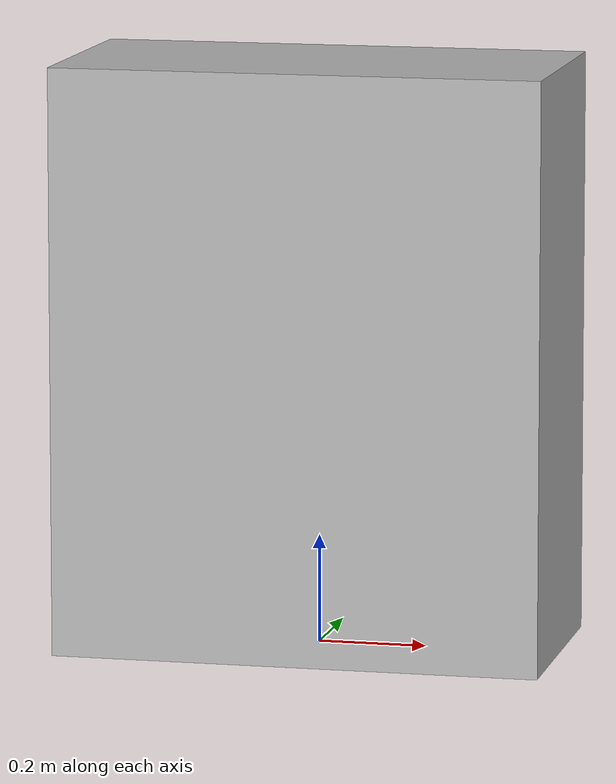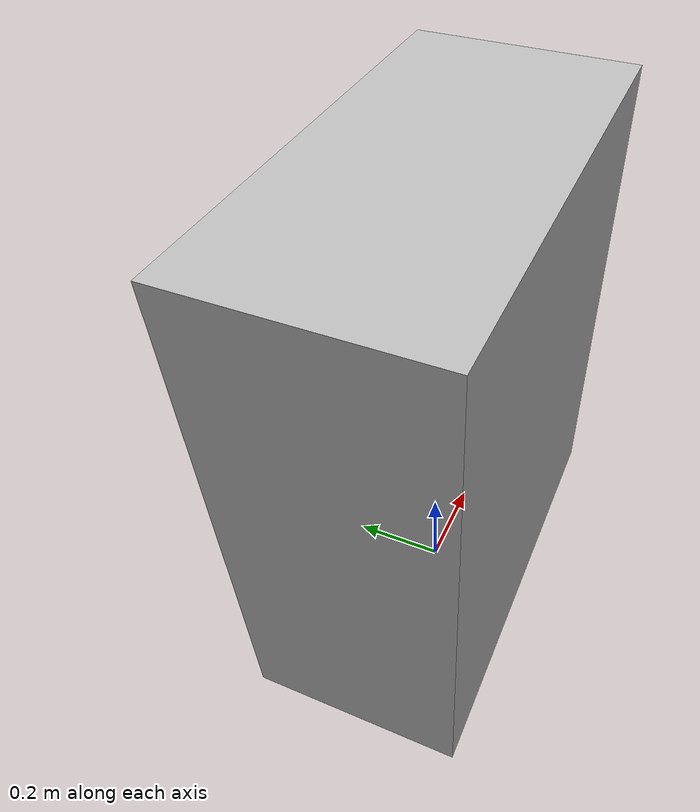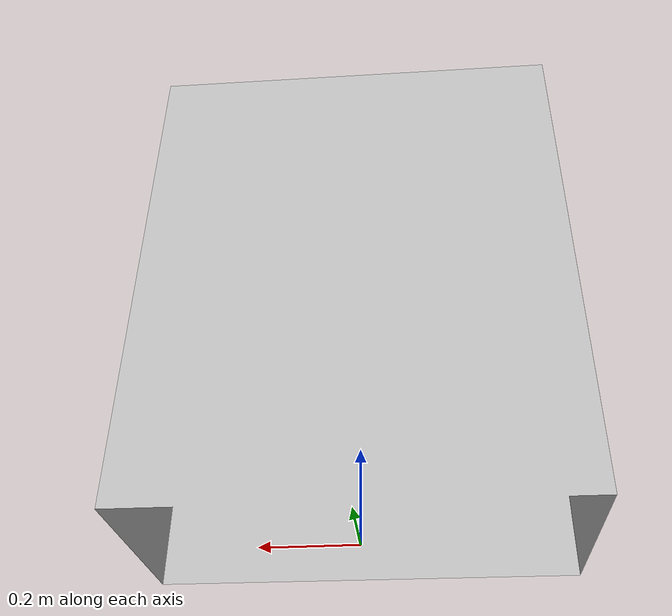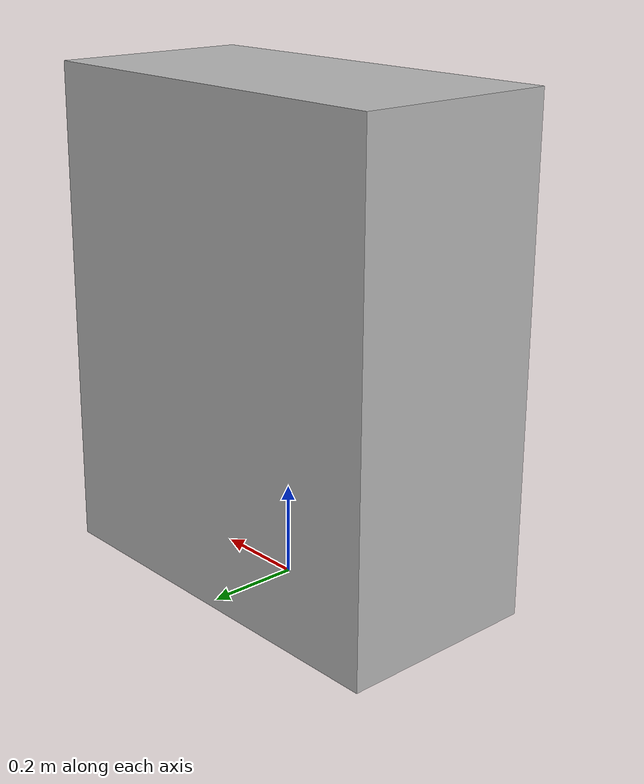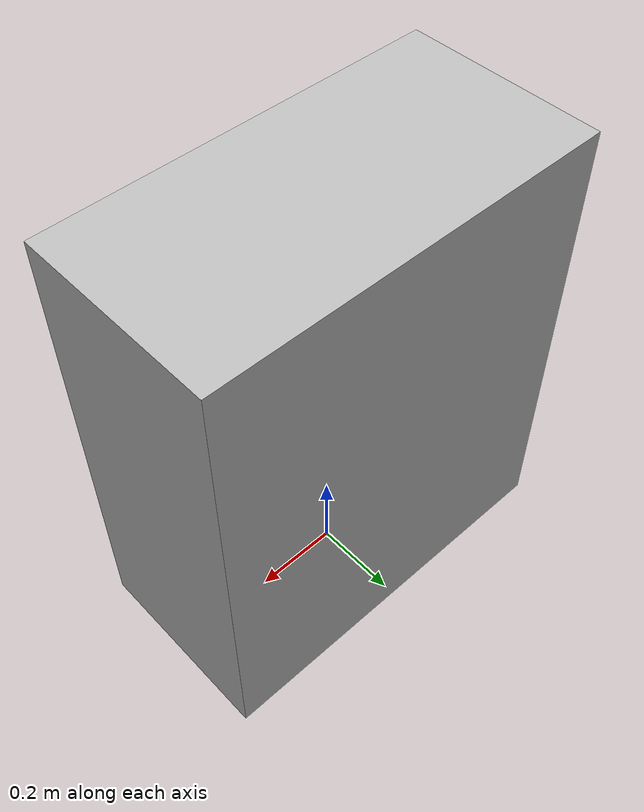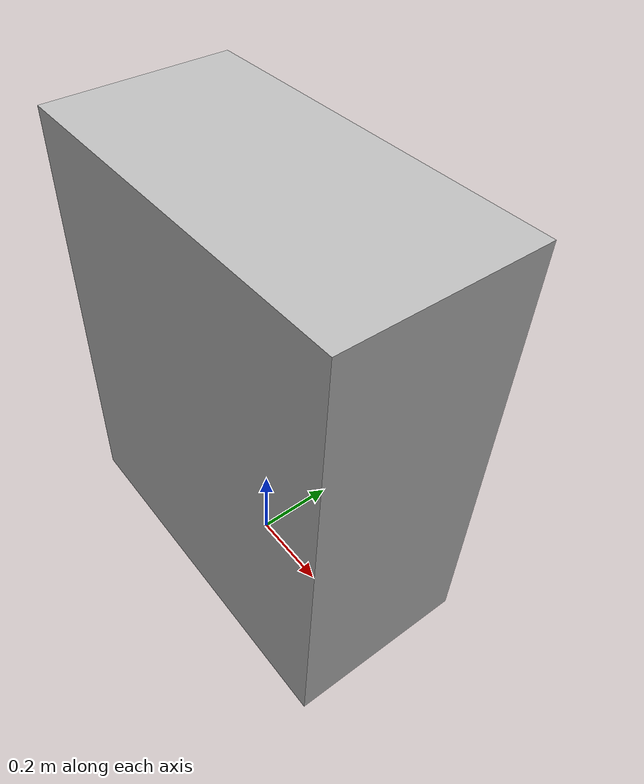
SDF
<?xml version='1.0' encoding='utf-8'?>
<sdf version="1.6">
  <model name="WhiteCabinet">
   <static>true</static>
    <link name="body">
      <pose>0 0 0 0 0 0</pose>

      <visual name="visual">
        <geometry>
          <mesh>
            <uri>model://WhiteCabinet/meshes/WhiteCabinet.obj</uri>
          </mesh>
        </geometry>
      </visual>

      <collision name="collision">
        <geometry>
          <mesh>
            <uri>model://WhiteCabinet/meshes/WhiteCabinet.obj</uri>
          </mesh>
        </geometry>
      </collision>

    </link>
  </model>
</sdf>
